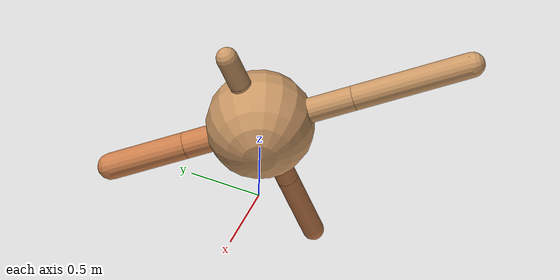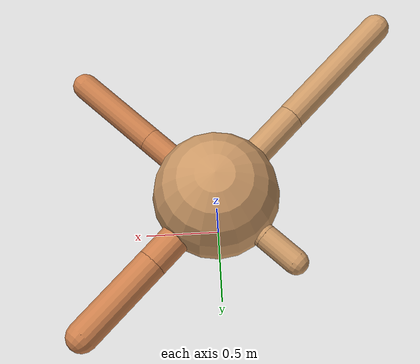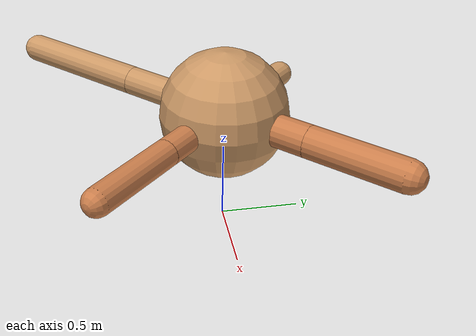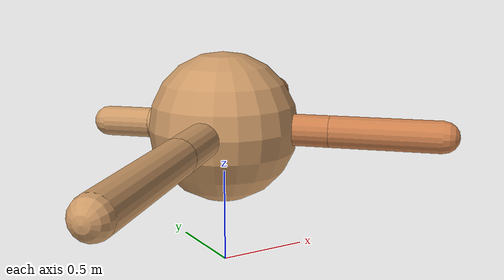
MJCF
<?xml version="1.0" ?>
<mujoco model="ant">

	<compiler angle="degree" coordinate="local" inertiafromgeom="true"/>

	<option integrator="RK4" timestep="0.01"/>

	<custom>

		<numeric data="0.0 0.0 0.55 1.0 0.0 0.0 0.0 0.0 1.0 0.0 -1.0 0.0 -1.0 0.0 1.0" name="init_qpos"/>

	</custom>

	<default>

		<joint armature="1" damping="1" limited="true"/>

		<geom conaffinity="0" condim="3" density="5.0" friction="1.5 0.1 0.1" margin="0.01" rgba="0.8 0.6 0.4 1"/>

	</default>

	<worldbody>

		<body name="torso" pos="0 0 0.75">

			<geom name="torso_geom" pos="0 0 0" size="0.4003233853050894" type="sphere"/>

			<!--joint armature="0" damping="0" limited="false" margin="0.01" name="root" pos="0 0 0" type="free"/-->

			<body name="front_left_leg" pos="0 0 0">

				<geom fromto="0 0 0 0.2 0.2 0" name="aux_1_geom" size="0.10068252179772494" type="capsule" rgba=".8 .5 .3 1"/>

				<body name="aux_1" pos="0.2 0.2 0">

					<joint axis="0 0 1" name="hip_1" pos="0.0 0.0 0.0" range="-40 40" type="hinge"/>

					<geom fromto="0 0 0 0.21476686383966703 0.21476686383966703 0" name="left_leg_geom" size="0.10068252179772494" type="capsule" rgba=".8 .5 .3 1"/>

					<body pos="0.21476686383966703 0.21476686383966703 0" name="front_left_foot">

						<joint axis="-1 1 0" name="ankle_1" pos="0.0 0.0 0.0" range="30 100" type="hinge"/>

						<geom fromto="0 0 0 0.42953372767933407 0.42953372767933407 0" name="left_ankle_geom" size="0.10068252179772494" type="capsule" rgba=".8 .5 .3 1"/>

					</body>

				</body>

			</body>

			<body name="front_right_leg" pos="0 0 0">

				<geom fromto="0 0 0 -0.2 0.2 0" name="aux_2_geom" size="0.0801306971985985" type="capsule"/>

				<body name="aux_2" pos="-0.2 0.2 0">

					<joint axis="0 0 1" name="hip_2" pos="0.0 0.0 0.0" range="-40 40" type="hinge"/>

					<geom fromto="0 0 0 -0.08781680795263161 0.08781680795263161 0" name="right_leg_geom" size="0.0801306971985985" type="capsule"/>

					<body pos="-0.08781680795263161 0.08781680795263161 0" name="front_right_foot">

						<joint axis="1 1 0" name="ankle_2" pos="0.0 0.0 0.0" range="-100 -30" type="hinge"/>

						<geom fromto="0 0 0 -0.17563361590526322 0.17563361590526322 0" name="right_ankle_geom" size="0.0801306971985985" type="capsule"/>

					</body>

				</body>

			</body>

			<body name="left_back_leg" pos="0 0 0">

				<geom fromto="0 0 0 -0.2 -0.2 0" name="aux_3_geom" size="0.09217540075204138" type="capsule"/>

				<body name="aux_3" pos="-0.2 -0.2 0">

					<joint axis="0 0 1" name="hip_3" pos="0.0 0.0 0.0" range="-40 40" type="hinge"/>

					<geom fromto="0 0 0 -0.3108612151975849 -0.3108612151975849 0" name="back_leg_geom" size="0.09217540075204138" type="capsule"/>

					<body pos="-0.3108612151975849 -0.3108612151975849 0" name="left_back_foot">

						<joint axis="-1 1 0" name="ankle_3" pos="0.0 0.0 0.0" range="-100 -30" type="hinge"/>

						<geom fromto="0 0 0 -0.6217224303951698 -0.6217224303951698 0" name="third_ankle_geom" size="0.09217540075204138" type="capsule"/>

					</body>

				</body>

			</body>

			<body name="right_back_leg" pos="0 0 0">

				<geom fromto="0 0 0 0.2 -0.2 0" name="aux_4_geom" size="0.08351790409719889" type="capsule" rgba=".8 .5 .3 1"/>

				<body name="aux_4" pos="0.2 -0.2 0">

					<joint axis="0 0 1" name="hip_4" pos="0.0 0.0 0.0" range="-40 40" type="hinge"/>

					<geom fromto="0 0 0 0.2043390111045298 -0.2043390111045298 0" name="rightback_leg_geom" size="0.08351790409719889" type="capsule" rgba=".8 .5 .3 1"/>

					<body pos="0.2043390111045298 -0.2043390111045298 0" name="right_back_foot">

						<joint axis="1 1 0" name="ankle_4" pos="0.0 0.0 0.0" range="30 100" type="hinge"/>

						<geom fromto="0 0 0 0.4086780222090596 -0.4086780222090596 0" name="fourth_ankle_geom" size="0.08351790409719889" type="capsule" rgba=".8 .5 .3 1"/>

					</body>

				</body>

			</body>

		</body>

	</worldbody>

	<actuator>

		<motor ctrllimited="true" ctrlrange="-1.0 1.0" joint="hip_4" gear="150"/>

		<motor ctrllimited="true" ctrlrange="-1.0 1.0" joint="ankle_4" gear="150"/>

		<motor ctrllimited="true" ctrlrange="-1.0 1.0" joint="hip_1" gear="150"/>

		<motor ctrllimited="true" ctrlrange="-1.0 1.0" joint="ankle_1" gear="150"/>

		<motor ctrllimited="true" ctrlrange="-1.0 1.0" joint="hip_2" gear="150"/>

		<motor ctrllimited="true" ctrlrange="-1.0 1.0" joint="ankle_2" gear="150"/>

		<motor ctrllimited="true" ctrlrange="-1.0 1.0" joint="hip_3" gear="150"/>

		<motor ctrllimited="true" ctrlrange="-1.0 1.0" joint="ankle_3" gear="150"/>

	</actuator>

</mujoco>
